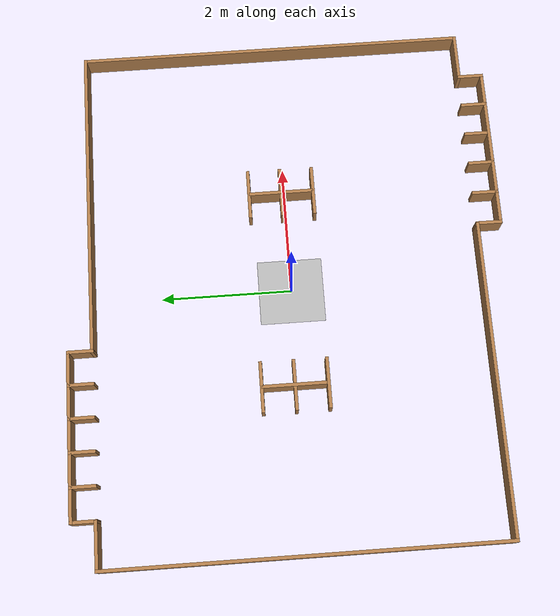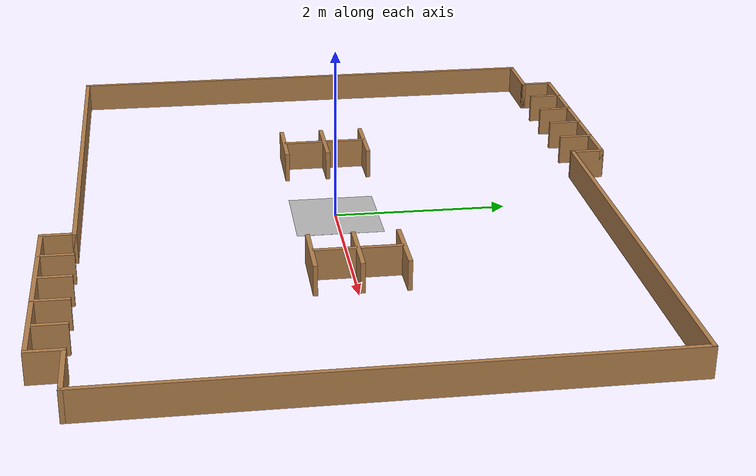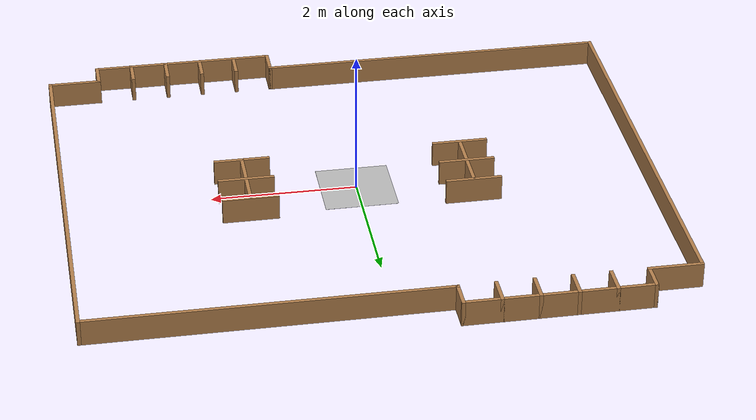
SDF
<sdf version="1.4">
  <world name="default">
    <gui>
      <camera name="camera_view">
        <pose>0 0 10 0 1.5707963 1.5707963</pose>
      </camera>
    </gui>
    <scene>
      <ambient>0.8 0.8 0.8 1.0</ambient>
      <background>0.8 0.8 0.8 1.0</background>
      <shadows>1</shadows>
    </scene>
    <physics type="ode">
      <gravity>0.0 0.0 -9.8</gravity>
      <ode>
        <solver>
          <type>quick</type>
          <iters>10</iters>
          <precon_iters>0</precon_iters>
          <sor>1.3</sor>
        </solver>
        <constraints>
          <cfm>0.000000000001</cfm>
          <erp>0.2</erp>
          <contact_max_correcting_vel>100.0</contact_max_correcting_vel>
          <contact_surface_layer>0.005</contact_surface_layer>
        </constraints>
      </ode>
      <real_time_update_rate>2000.0</real_time_update_rate>
      <max_step_size>0.001</max_step_size>
    </physics> -->
    <!-- Ground Plane -->
    <model name="plane1_model">
      <link name="body">
        <collision name="geom_1">
          <geometry>
            <plane>
              <normal>0 0 1</normal>
            </plane>
          </geometry>
          <surface>
            <friction>
              <ode>
                <mu>-1.0</mu>
                <mu2>-1.0</mu2>
                <fdir1>0.0 0.0 0.0</fdir1>
                <slip1>0.0</slip1>
                <slip2>0.0</slip2>
              </ode>
            </friction>
            <bounce>
              <restitution_coefficient>0.0</restitution_coefficient>
              <threshold>100000.0</threshold>
            </bounce>
            <contact>
              <ode>
                <soft_cfm>0.0</soft_cfm>
                <soft_erp>0.2</soft_erp>
                <kp>1000000.0</kp>
                <kd>1.0</kd>
                <max_vel>100.0</max_vel>
                <min_depth>0.001</min_depth>
              </ode>
            </contact>
          </surface>
        </collision>
        <visual name="visual_1">
          <geometry>
            <plane>
              <normal>0 0 1</normal>
            </plane>
          </geometry>
          <cast_shadows>0</cast_shadows>
        </visual>
      </link>
      <static>1</static>
    </model>
    <!-- Directional Light -->
    <!-- Point Light -->
    <!-- Walls -->
    <model name="wall_model0">
      <pose>-4 0.05 0.15 0 0 -1.5708</pose>
      <link name="wall_body">
        <pose>0 0 0 0 0 0</pose>
        <collision name="wall_geom">
          <pose>0 0 0 0 0 0</pose>
          <geometry>
            <box>
              <size>6.05 0.05 0.35</size>
            </box>
          </geometry>
          <surface>
            <friction>
              <ode>
                <mu>-1</mu>
                <mu2>-1</mu2>
                <fdir1>0.0 0.0 0.0</fdir1>
                <slip1>0</slip1>
                <slip2>0</slip2>
              </ode>
            </friction>
            <bounce>
              <restitution_coefficient>0</restitution_coefficient>
              <threshold>100000</threshold>
            </bounce>
            <contact>
              <ode>
                <soft_cfm>0</soft_cfm>
                <soft_erp>0.2</soft_erp>
                <kp>1000000000000</kp>
                <kd>1</kd>
                <max_vel>100</max_vel>
                <min_depth>0.001</min_depth>
              </ode>
            </contact>
          </surface>
          <laser_retro>0</laser_retro>
        </collision>
        <visual name="wall_geom_visual">
          <pose>0 0 0 0 0 0</pose>
          <geometry>
            <box>
              <size>6.05 0.05 0.35</size>
            </box>
          </geometry>
          <material>
            <script>
              <uri>file://media/materials/scripts/gazebo.material</uri>
              <name>Gazebo/Wood</name>
            </script>
          </material>
          <cast_shadows>1</cast_shadows>
          <laser_retro>0</laser_retro>
          <transparency>0</transparency>
        </visual>
        <gravity>1</gravity>
        <self_collide>0</self_collide>
        <kinematic>0</kinematic>
      </link>
      <static>1</static>
    </model>
    <model name="wall_model1">
      <pose>-3.65 3.05 0.15 0 0 0</pose>
      <link name="wall_body">
        <pose>0 0 0 0 0 0</pose>
        <collision name="wall_geom">
          <pose>0 0 0 0 0 0</pose>
          <geometry>
            <box>
              <size>0.75 0.05 0.35</size>
            </box>
          </geometry>
          <surface>
            <friction>
              <ode>
                <mu>-1</mu>
                <mu2>-1</mu2>
                <fdir1>0.0 0.0 0.0</fdir1>
                <slip1>0</slip1>
                <slip2>0</slip2>
              </ode>
            </friction>
            <bounce>
              <restitution_coefficient>0</restitution_coefficient>
              <threshold>100000</threshold>
            </bounce>
            <contact>
              <ode>
                <soft_cfm>0</soft_cfm>
                <soft_erp>0.2</soft_erp>
                <kp>1000000000000</kp>
                <kd>1</kd>
                <max_vel>100</max_vel>
                <min_depth>0.001</min_depth>
              </ode>
            </contact>
          </surface>
          <laser_retro>0</laser_retro>
        </collision>
        <visual name="wall_geom_visual">
          <pose>0 0 0 0 0 0</pose>
          <geometry>
            <box>
              <size>0.75 0.05 0.35</size>
            </box>
          </geometry>
          <material>
            <script>
              <uri>file://media/materials/scripts/gazebo.material</uri>
              <name>Gazebo/Wood</name>
            </script>
          </material>
          <cast_shadows>1</cast_shadows>
          <laser_retro>0</laser_retro>
          <transparency>0</transparency>
        </visual>
        <gravity>1</gravity>
        <self_collide>0</self_collide>
        <kinematic>0</kinematic>
      </link>
      <static>1</static>
    </model>
    <model name="wall_model2">
      <pose>1.6 3.05 0.15 0 0 0</pose>
      <link name="wall_body">
        <pose>0 0 0 0 0 0</pose>
        <collision name="wall_geom">
          <pose>0 0 0 0 0 0</pose>
          <geometry>
            <box>
              <size>4.85 0.05 0.35</size>
            </box>
          </geometry>
          <surface>
            <friction>
              <ode>
                <mu>-1</mu>
                <mu2>-1</mu2>
                <fdir1>0.0 0.0 0.0</fdir1>
                <slip1>0</slip1>
                <slip2>0</slip2>
              </ode>
            </friction>
            <bounce>
              <restitution_coefficient>0</restitution_coefficient>
              <threshold>100000</threshold>
            </bounce>
            <contact>
              <ode>
                <soft_cfm>0</soft_cfm>
                <soft_erp>0.2</soft_erp>
                <kp>1000000000000</kp>
                <kd>1</kd>
                <max_vel>100</max_vel>
                <min_depth>0.001</min_depth>
              </ode>
            </contact>
          </surface>
          <laser_retro>0</laser_retro>
        </collision>
        <visual name="wall_geom_visual">
          <pose>0 0 0 0 0 0</pose>
          <geometry>
            <box>
              <size>4.85 0.05 0.35</size>
            </box>
          </geometry>
          <material>
            <script>
              <uri>file://media/materials/scripts/gazebo.material</uri>
              <name>Gazebo/Wood</name>
            </script>
          </material>
          <cast_shadows>1</cast_shadows>
          <laser_retro>0</laser_retro>
          <transparency>0</transparency>
        </visual>
        <gravity>1</gravity>
        <self_collide>0</self_collide>
        <kinematic>0</kinematic>
      </link>
      <static>1</static>
    </model>
    <model name="wall_model3">
      <pose>4 0.05 0.15 0 0 -1.5708</pose>
      <link name="wall_body">
        <pose>0 0 0 0 0 0</pose>
        <collision name="wall_geom">
          <pose>0 0 0 0 0 0</pose>
          <geometry>
            <box>
              <size>6.05 0.05 0.35</size>
            </box>
          </geometry>
          <surface>
            <friction>
              <ode>
                <mu>-1</mu>
                <mu2>-1</mu2>
                <fdir1>0.0 0.0 0.0</fdir1>
                <slip1>0</slip1>
                <slip2>0</slip2>
              </ode>
            </friction>
            <bounce>
              <restitution_coefficient>0</restitution_coefficient>
              <threshold>100000</threshold>
            </bounce>
            <contact>
              <ode>
                <soft_cfm>0</soft_cfm>
                <soft_erp>0.2</soft_erp>
                <kp>1000000000000</kp>
                <kd>1</kd>
                <max_vel>100</max_vel>
                <min_depth>0.001</min_depth>
              </ode>
            </contact>
          </surface>
          <laser_retro>0</laser_retro>
        </collision>
        <visual name="wall_geom_visual">
          <pose>0 0 0 0 0 0</pose>
          <geometry>
            <box>
              <size>6.05 0.05 0.35</size>
            </box>
          </geometry>
          <material>
            <script>
              <uri>file://media/materials/scripts/gazebo.material</uri>
              <name>Gazebo/Wood</name>
            </script>
          </material>
          <cast_shadows>1</cast_shadows>
          <laser_retro>0</laser_retro>
          <transparency>0</transparency>
        </visual>
        <gravity>1</gravity>
        <self_collide>0</self_collide>
        <kinematic>0</kinematic>
      </link>
      <static>1</static>
    </model>
    <model name="wall_model4">
      <pose>-1.575 -2.95 0.15 0 0 0</pose>
      <link name="wall_body">
        <pose>0 0 0 0 0 0</pose>
        <collision name="wall_geom">
          <pose>0 0 0 0 0 0</pose>
          <geometry>
            <box>
              <size>4.8 0.05 0.35</size>
            </box>
          </geometry>
          <surface>
            <friction>
              <ode>
                <mu>-1</mu>
                <mu2>-1</mu2>
                <fdir1>0.0 0.0 0.0</fdir1>
                <slip1>0</slip1>
                <slip2>0</slip2>
              </ode>
            </friction>
            <bounce>
              <restitution_coefficient>0</restitution_coefficient>
              <threshold>100000</threshold>
            </bounce>
            <contact>
              <ode>
                <soft_cfm>0</soft_cfm>
                <soft_erp>0.2</soft_erp>
                <kp>1000000000000</kp>
                <kd>1</kd>
                <max_vel>100</max_vel>
                <min_depth>0.001</min_depth>
              </ode>
            </contact>
          </surface>
          <laser_retro>0</laser_retro>
        </collision>
        <visual name="wall_geom_visual">
          <pose>0 0 0 0 0 0</pose>
          <geometry>
            <box>
              <size>4.8 0.05 0.35</size>
            </box>
          </geometry>
          <material>
            <script>
              <uri>file://media/materials/scripts/gazebo.material</uri>
              <name>Gazebo/Wood</name>
            </script>
          </material>
          <cast_shadows>1</cast_shadows>
          <laser_retro>0</laser_retro>
          <transparency>0</transparency>
        </visual>
        <gravity>1</gravity>
        <self_collide>0</self_collide>
        <kinematic>0</kinematic>
      </link>
      <static>1</static>
    </model>
    <model name="wall_model5">
      <pose>3.65 -2.95 0.15 0 0 0</pose>
      <link name="wall_body">
        <pose>0 0 0 0 0 0</pose>
        <collision name="wall_geom">
          <pose>0 0 0 0 0 0</pose>
          <geometry>
            <box>
              <size>0.75 0.05 0.35</size>
            </box>
          </geometry>
          <surface>
            <friction>
              <ode>
                <mu>-1</mu>
                <mu2>-1</mu2>
                <fdir1>0.0 0.0 0.0</fdir1>
                <slip1>0</slip1>
                <slip2>0</slip2>
              </ode>
            </friction>
            <bounce>
              <restitution_coefficient>0</restitution_coefficient>
              <threshold>100000</threshold>
            </bounce>
            <contact>
              <ode>
                <soft_cfm>0</soft_cfm>
                <soft_erp>0.2</soft_erp>
                <kp>1000000000000</kp>
                <kd>1</kd>
                <max_vel>100</max_vel>
                <min_depth>0.001</min_depth>
              </ode>
            </contact>
          </surface>
          <laser_retro>0</laser_retro>
        </collision>
        <visual name="wall_geom_visual">
          <pose>0 0 0 0 0 0</pose>
          <geometry>
            <box>
              <size>0.75 0.05 0.35</size>
            </box>
          </geometry>
          <material>
            <script>
              <uri>file://media/materials/scripts/gazebo.material</uri>
              <name>Gazebo/Wood</name>
            </script>
          </material>
          <cast_shadows>1</cast_shadows>
          <laser_retro>0</laser_retro>
          <transparency>0</transparency>
        </visual>
        <gravity>1</gravity>
        <self_collide>0</self_collide>
        <kinematic>0</kinematic>
      </link>
      <static>1</static>
    </model>
    <model name="wall_model6">
      <pose>-3.3 3.23 0.15 0 0 1.5708</pose>
      <link name="wall_body">
        <pose>0 0 0 0 0 0</pose>
        <collision name="wall_geom">
          <pose>0 0 0 0 0 0</pose>
          <geometry>
            <box>
              <size>0.41 0.05 0.35</size>
            </box>
          </geometry>
          <surface>
            <friction>
              <ode>
                <mu>-1</mu>
                <mu2>-1</mu2>
                <fdir1>0.0 0.0 0.0</fdir1>
                <slip1>0</slip1>
                <slip2>0</slip2>
              </ode>
            </friction>
            <bounce>
              <restitution_coefficient>0</restitution_coefficient>
              <threshold>100000</threshold>
            </bounce>
            <contact>
              <ode>
                <soft_cfm>0</soft_cfm>
                <soft_erp>0.2</soft_erp>
                <kp>1000000000000</kp>
                <kd>1</kd>
                <max_vel>100</max_vel>
                <min_depth>0.001</min_depth>
              </ode>
            </contact>
          </surface>
          <laser_retro>0</laser_retro>
        </collision>
        <visual name="wall_geom_visual">
          <pose>0 0 0 0 0 0</pose>
          <geometry>
            <box>
              <size>0.41 0.05 0.35</size>
            </box>
          </geometry>
          <material>
            <script>
              <uri>file://media/materials/scripts/gazebo.material</uri>
              <name>Gazebo/Wood</name>
            </script>
          </material>
          <cast_shadows>1</cast_shadows>
          <laser_retro>0</laser_retro>
          <transparency>0</transparency>
        </visual>
        <gravity>1</gravity>
        <self_collide>0</self_collide>
        <kinematic>0</kinematic>
      </link>
      <static>1</static>
    </model>
    <model name="wall_model7">
      <pose>-2.8 3.23 0.15 0 0 1.5708</pose>
      <link name="wall_body">
        <pose>0 0 0 0 0 0</pose>
        <collision name="wall_geom">
          <pose>0 0 0 0 0 0</pose>
          <geometry>
            <box>
              <size>0.41 0.05 0.35</size>
            </box>
          </geometry>
          <surface>
            <friction>
              <ode>
                <mu>-1</mu>
                <mu2>-1</mu2>
                <fdir1>0.0 0.0 0.0</fdir1>
                <slip1>0</slip1>
                <slip2>0</slip2>
              </ode>
            </friction>
            <bounce>
              <restitution_coefficient>0</restitution_coefficient>
              <threshold>100000</threshold>
            </bounce>
            <contact>
              <ode>
                <soft_cfm>0</soft_cfm>
                <soft_erp>0.2</soft_erp>
                <kp>1000000000000</kp>
                <kd>1</kd>
                <max_vel>100</max_vel>
                <min_depth>0.001</min_depth>
              </ode>
            </contact>
          </surface>
          <laser_retro>0</laser_retro>
        </collision>
        <visual name="wall_geom_visual">
          <pose>0 0 0 0 0 0</pose>
          <geometry>
            <box>
              <size>0.41 0.05 0.35</size>
            </box>
          </geometry>
          <material>
            <script>
              <uri>file://media/materials/scripts/gazebo.material</uri>
              <name>Gazebo/Wood</name>
            </script>
          </material>
          <cast_shadows>1</cast_shadows>
          <laser_retro>0</laser_retro>
          <transparency>0</transparency>
        </visual>
        <gravity>1</gravity>
        <self_collide>0</self_collide>
        <kinematic>0</kinematic>
      </link>
      <static>1</static>
    </model>
    <model name="wall_model8">
      <pose>-2.3 3.23 0.15 0 0 1.5708</pose>
      <link name="wall_body">
        <pose>0 0 0 0 0 0</pose>
        <collision name="wall_geom">
          <pose>0 0 0 0 0 0</pose>
          <geometry>
            <box>
              <size>0.41 0.05 0.35</size>
            </box>
          </geometry>
          <surface>
            <friction>
              <ode>
                <mu>-1</mu>
                <mu2>-1</mu2>
                <fdir1>0.0 0.0 0.0</fdir1>
                <slip1>0</slip1>
                <slip2>0</slip2>
              </ode>
            </friction>
            <bounce>
              <restitution_coefficient>0</restitution_coefficient>
              <threshold>100000</threshold>
            </bounce>
            <contact>
              <ode>
                <soft_cfm>0</soft_cfm>
                <soft_erp>0.2</soft_erp>
                <kp>1000000000000</kp>
                <kd>1</kd>
                <max_vel>100</max_vel>
                <min_depth>0.001</min_depth>
              </ode>
            </contact>
          </surface>
          <laser_retro>0</laser_retro>
        </collision>
        <visual name="wall_geom_visual">
          <pose>0 0 0 0 0 0</pose>
          <geometry>
            <box>
              <size>0.41 0.05 0.35</size>
            </box>
          </geometry>
          <material>
            <script>
              <uri>file://media/materials/scripts/gazebo.material</uri>
              <name>Gazebo/Wood</name>
            </script>
          </material>
          <cast_shadows>1</cast_shadows>
          <laser_retro>0</laser_retro>
          <transparency>0</transparency>
        </visual>
        <gravity>1</gravity>
        <self_collide>0</self_collide>
        <kinematic>0</kinematic>
      </link>
      <static>1</static>
    </model>
    <model name="wall_model9">
      <pose>-1.8 3.23 0.15 0 0 1.5708</pose>
      <link name="wall_body">
        <pose>0 0 0 0 0 0</pose>
        <collision name="wall_geom">
          <pose>0 0 0 0 0 0</pose>
          <geometry>
            <box>
              <size>0.41 0.05 0.35</size>
            </box>
          </geometry>
          <surface>
            <friction>
              <ode>
                <mu>-1</mu>
                <mu2>-1</mu2>
                <fdir1>0.0 0.0 0.0</fdir1>
                <slip1>0</slip1>
                <slip2>0</slip2>
              </ode>
            </friction>
            <bounce>
              <restitution_coefficient>0</restitution_coefficient>
              <threshold>100000</threshold>
            </bounce>
            <contact>
              <ode>
                <soft_cfm>0</soft_cfm>
                <soft_erp>0.2</soft_erp>
                <kp>1000000000000</kp>
                <kd>1</kd>
                <max_vel>100</max_vel>
                <min_depth>0.001</min_depth>
              </ode>
            </contact>
          </surface>
          <laser_retro>0</laser_retro>
        </collision>
        <visual name="wall_geom_visual">
          <pose>0 0 0 0 0 0</pose>
          <geometry>
            <box>
              <size>0.41 0.05 0.35</size>
            </box>
          </geometry>
          <material>
            <script>
              <uri>file://media/materials/scripts/gazebo.material</uri>
              <name>Gazebo/Wood</name>
            </script>
          </material>
          <cast_shadows>1</cast_shadows>
          <laser_retro>0</laser_retro>
          <transparency>0</transparency>
        </visual>
        <gravity>1</gravity>
        <self_collide>0</self_collide>
        <kinematic>0</kinematic>
      </link>
      <static>1</static>
    </model>
    <model name="wall_model10">
      <pose>-1.3 3.23 0.15 0 0 1.5708</pose>
      <link name="wall_body">
        <pose>0 0 0 0 0 0</pose>
        <collision name="wall_geom">
          <pose>0 0 0 0 0 0</pose>
          <geometry>
            <box>
              <size>0.41 0.05 0.35</size>
            </box>
          </geometry>
          <surface>
            <friction>
              <ode>
                <mu>-1</mu>
                <mu2>-1</mu2>
                <fdir1>0.0 0.0 0.0</fdir1>
                <slip1>0</slip1>
                <slip2>0</slip2>
              </ode>
            </friction>
            <bounce>
              <restitution_coefficient>0</restitution_coefficient>
              <threshold>100000</threshold>
            </bounce>
            <contact>
              <ode>
                <soft_cfm>0</soft_cfm>
                <soft_erp>0.2</soft_erp>
                <kp>1000000000000</kp>
                <kd>1</kd>
                <max_vel>100</max_vel>
                <min_depth>0.001</min_depth>
              </ode>
            </contact>
          </surface>
          <laser_retro>0</laser_retro>
        </collision>
        <visual name="wall_geom_visual">
          <pose>0 0 0 0 0 0</pose>
          <geometry>
            <box>
              <size>0.41 0.05 0.35</size>
            </box>
          </geometry>
          <material>
            <script>
              <uri>file://media/materials/scripts/gazebo.material</uri>
              <name>Gazebo/Wood</name>
            </script>
          </material>
          <cast_shadows>1</cast_shadows>
          <laser_retro>0</laser_retro>
          <transparency>0</transparency>
        </visual>
        <gravity>1</gravity>
        <self_collide>0</self_collide>
        <kinematic>0</kinematic>
      </link>
      <static>1</static>
    </model>
    <model name="wall_model11">
      <pose>-0.8 3.23 0.15 0 0 1.5708</pose>
      <link name="wall_body">
        <pose>0 0 0 0 0 0</pose>
        <collision name="wall_geom">
          <pose>0 0 0 0 0 0</pose>
          <geometry>
            <box>
              <size>0.41 0.05 0.35</size>
            </box>
          </geometry>
          <surface>
            <friction>
              <ode>
                <mu>-1</mu>
                <mu2>-1</mu2>
                <fdir1>0.0 0.0 0.0</fdir1>
                <slip1>0</slip1>
                <slip2>0</slip2>
              </ode>
            </friction>
            <bounce>
              <restitution_coefficient>0</restitution_coefficient>
              <threshold>100000</threshold>
            </bounce>
            <contact>
              <ode>
                <soft_cfm>0</soft_cfm>
                <soft_erp>0.2</soft_erp>
                <kp>1000000000000</kp>
                <kd>1</kd>
                <max_vel>100</max_vel>
                <min_depth>0.001</min_depth>
              </ode>
            </contact>
          </surface>
          <laser_retro>0</laser_retro>
        </collision>
        <visual name="wall_geom_visual">
          <pose>0 0 0 0 0 0</pose>
          <geometry>
            <box>
              <size>0.41 0.05 0.35</size>
            </box>
          </geometry>
          <material>
            <script>
              <uri>file://media/materials/scripts/gazebo.material</uri>
              <name>Gazebo/Wood</name>
            </script>
          </material>
          <cast_shadows>1</cast_shadows>
          <laser_retro>0</laser_retro>
          <transparency>0</transparency>
        </visual>
        <gravity>1</gravity>
        <self_collide>0</self_collide>
        <kinematic>0</kinematic>
      </link>
      <static>1</static>
    </model>
    <model name="wall_model12">
      <pose>-2.05 3.41 0.15 0 0 0</pose>
      <link name="wall_body">
        <pose>0 0 0 0 0 0</pose>
        <collision name="wall_geom">
          <pose>0 0 0 0 0 0</pose>
          <geometry>
            <box>
              <size>2.55 0.05 0.35</size>
            </box>
          </geometry>
          <surface>
            <friction>
              <ode>
                <mu>-1</mu>
                <mu2>-1</mu2>
                <fdir1>0.0 0.0 0.0</fdir1>
                <slip1>0</slip1>
                <slip2>0</slip2>
              </ode>
            </friction>
            <bounce>
              <restitution_coefficient>0</restitution_coefficient>
              <threshold>100000</threshold>
            </bounce>
            <contact>
              <ode>
                <soft_cfm>0</soft_cfm>
                <soft_erp>0.2</soft_erp>
                <kp>1000000000000</kp>
                <kd>1</kd>
                <max_vel>100</max_vel>
                <min_depth>0.001</min_depth>
              </ode>
            </contact>
          </surface>
          <laser_retro>0</laser_retro>
        </collision>
        <visual name="wall_geom_visual">
          <pose>0 0 0 0 0 0</pose>
          <geometry>
            <box>
              <size>2.55 0.05 0.35</size>
            </box>
          </geometry>
          <material>
            <script>
              <uri>file://media/materials/scripts/gazebo.material</uri>
              <name>Gazebo/Wood</name>
            </script>
          </material>
          <cast_shadows>1</cast_shadows>
          <laser_retro>0</laser_retro>
          <transparency>0</transparency>
        </visual>
        <gravity>1</gravity>
        <self_collide>0</self_collide>
        <kinematic>0</kinematic>
      </link>
      <static>1</static>
    </model>
    <model name="wall_model13">
      <pose>3.3 -3.13 0.15 0 0 -1.5708</pose>
      <link name="wall_body">
        <pose>0 0 0 0 0 0</pose>
        <collision name="wall_geom">
          <pose>0 0 0 0 0 0</pose>
          <geometry>
            <box>
              <size>0.41 0.05 0.35</size>
            </box>
          </geometry>
          <surface>
            <friction>
              <ode>
                <mu>-1</mu>
                <mu2>-1</mu2>
                <fdir1>0.0 0.0 0.0</fdir1>
                <slip1>0</slip1>
                <slip2>0</slip2>
              </ode>
            </friction>
            <bounce>
              <restitution_coefficient>0</restitution_coefficient>
              <threshold>100000</threshold>
            </bounce>
            <contact>
              <ode>
                <soft_cfm>0</soft_cfm>
                <soft_erp>0.2</soft_erp>
                <kp>1000000000000</kp>
                <kd>1</kd>
                <max_vel>100</max_vel>
                <min_depth>0.001</min_depth>
              </ode>
            </contact>
          </surface>
          <laser_retro>0</laser_retro>
        </collision>
        <visual name="wall_geom_visual">
          <pose>0 0 0 0 0 0</pose>
          <geometry>
            <box>
              <size>0.41 0.05 0.35</size>
            </box>
          </geometry>
          <material>
            <script>
              <uri>file://media/materials/scripts/gazebo.material</uri>
              <name>Gazebo/Wood</name>
            </script>
          </material>
          <cast_shadows>1</cast_shadows>
          <laser_retro>0</laser_retro>
          <transparency>0</transparency>
        </visual>
        <gravity>1</gravity>
        <self_collide>0</self_collide>
        <kinematic>0</kinematic>
      </link>
      <static>1</static>
    </model>
    <model name="wall_model14">
      <pose>2.8 -3.13 0.15 0 0 -1.5708</pose>
      <link name="wall_body">
        <pose>0 0 0 0 0 0</pose>
        <collision name="wall_geom">
          <pose>0 0 0 0 0 0</pose>
          <geometry>
            <box>
              <size>0.41 0.05 0.35</size>
            </box>
          </geometry>
          <surface>
            <friction>
              <ode>
                <mu>-1</mu>
                <mu2>-1</mu2>
                <fdir1>0.0 0.0 0.0</fdir1>
                <slip1>0</slip1>
                <slip2>0</slip2>
              </ode>
            </friction>
            <bounce>
              <restitution_coefficient>0</restitution_coefficient>
              <threshold>100000</threshold>
            </bounce>
            <contact>
              <ode>
                <soft_cfm>0</soft_cfm>
                <soft_erp>0.2</soft_erp>
                <kp>1000000000000</kp>
                <kd>1</kd>
                <max_vel>100</max_vel>
                <min_depth>0.001</min_depth>
              </ode>
            </contact>
          </surface>
          <laser_retro>0</laser_retro>
        </collision>
        <visual name="wall_geom_visual">
          <pose>0 0 0 0 0 0</pose>
          <geometry>
            <box>
              <size>0.41 0.05 0.35</size>
            </box>
          </geometry>
          <material>
            <script>
              <uri>file://media/materials/scripts/gazebo.material</uri>
              <name>Gazebo/Wood</name>
            </script>
          </material>
          <cast_shadows>1</cast_shadows>
          <laser_retro>0</laser_retro>
          <transparency>0</transparency>
        </visual>
        <gravity>1</gravity>
        <self_collide>0</self_collide>
        <kinematic>0</kinematic>
      </link>
      <static>1</static>
    </model>
    <model name="wall_model15">
      <pose>2.3 -3.13 0.15 0 0 -1.5708</pose>
      <link name="wall_body">
        <pose>0 0 0 0 0 0</pose>
        <collision name="wall_geom">
          <pose>0 0 0 0 0 0</pose>
          <geometry>
            <box>
              <size>0.41 0.05 0.35</size>
            </box>
          </geometry>
          <surface>
            <friction>
              <ode>
                <mu>-1</mu>
                <mu2>-1</mu2>
                <fdir1>0.0 0.0 0.0</fdir1>
                <slip1>0</slip1>
                <slip2>0</slip2>
              </ode>
            </friction>
            <bounce>
              <restitution_coefficient>0</restitution_coefficient>
              <threshold>100000</threshold>
            </bounce>
            <contact>
              <ode>
                <soft_cfm>0</soft_cfm>
                <soft_erp>0.2</soft_erp>
                <kp>1000000000000</kp>
                <kd>1</kd>
                <max_vel>100</max_vel>
                <min_depth>0.001</min_depth>
              </ode>
            </contact>
          </surface>
          <laser_retro>0</laser_retro>
        </collision>
        <visual name="wall_geom_visual">
          <pose>0 0 0 0 0 0</pose>
          <geometry>
            <box>
              <size>0.41 0.05 0.35</size>
            </box>
          </geometry>
          <material>
            <script>
              <uri>file://media/materials/scripts/gazebo.material</uri>
              <name>Gazebo/Wood</name>
            </script>
          </material>
          <cast_shadows>1</cast_shadows>
          <laser_retro>0</laser_retro>
          <transparency>0</transparency>
        </visual>
        <gravity>1</gravity>
        <self_collide>0</self_collide>
        <kinematic>0</kinematic>
      </link>
      <static>1</static>
    </model>
    <model name="wall_model16">
      <pose>1.8 -3.13 0.15 0 0 -1.5708</pose>
      <link name="wall_body">
        <pose>0 0 0 0 0 0</pose>
        <collision name="wall_geom">
          <pose>0 0 0 0 0 0</pose>
          <geometry>
            <box>
              <size>0.41 0.05 0.35</size>
            </box>
          </geometry>
          <surface>
            <friction>
              <ode>
                <mu>-1</mu>
                <mu2>-1</mu2>
                <fdir1>0.0 0.0 0.0</fdir1>
                <slip1>0</slip1>
                <slip2>0</slip2>
              </ode>
            </friction>
            <bounce>
              <restitution_coefficient>0</restitution_coefficient>
              <threshold>100000</threshold>
            </bounce>
            <contact>
              <ode>
                <soft_cfm>0</soft_cfm>
                <soft_erp>0.2</soft_erp>
                <kp>1000000000000</kp>
                <kd>1</kd>
                <max_vel>100</max_vel>
                <min_depth>0.001</min_depth>
              </ode>
            </contact>
          </surface>
          <laser_retro>0</laser_retro>
        </collision>
        <visual name="wall_geom_visual">
          <pose>0 0 0 0 0 0</pose>
          <geometry>
            <box>
              <size>0.41 0.05 0.35</size>
            </box>
          </geometry>
          <material>
            <script>
              <uri>file://media/materials/scripts/gazebo.material</uri>
              <name>Gazebo/Wood</name>
            </script>
          </material>
          <cast_shadows>1</cast_shadows>
          <laser_retro>0</laser_retro>
          <transparency>0</transparency>
        </visual>
        <gravity>1</gravity>
        <self_collide>0</self_collide>
        <kinematic>0</kinematic>
      </link>
      <static>1</static>
    </model>
    <model name="wall_model17">
      <pose>1.3 -3.13 0.15 0 0 -1.5708</pose>
      <link name="wall_body">
        <pose>0 0 0 0 0 0</pose>
        <collision name="wall_geom">
          <pose>0 0 0 0 0 0</pose>
          <geometry>
            <box>
              <size>0.41 0.05 0.35</size>
            </box>
          </geometry>
          <surface>
            <friction>
              <ode>
                <mu>-1</mu>
                <mu2>-1</mu2>
                <fdir1>0.0 0.0 0.0</fdir1>
                <slip1>0</slip1>
                <slip2>0</slip2>
              </ode>
            </friction>
            <bounce>
              <restitution_coefficient>0</restitution_coefficient>
              <threshold>100000</threshold>
            </bounce>
            <contact>
              <ode>
                <soft_cfm>0</soft_cfm>
                <soft_erp>0.2</soft_erp>
                <kp>1000000000000</kp>
                <kd>1</kd>
                <max_vel>100</max_vel>
                <min_depth>0.001</min_depth>
              </ode>
            </contact>
          </surface>
          <laser_retro>0</laser_retro>
        </collision>
        <visual name="wall_geom_visual">
          <pose>0 0 0 0 0 0</pose>
          <geometry>
            <box>
              <size>0.41 0.05 0.35</size>
            </box>
          </geometry>
          <material>
            <script>
              <uri>file://media/materials/scripts/gazebo.material</uri>
              <name>Gazebo/Wood</name>
            </script>
          </material>
          <cast_shadows>1</cast_shadows>
          <laser_retro>0</laser_retro>
          <transparency>0</transparency>
        </visual>
        <gravity>1</gravity>
        <self_collide>0</self_collide>
        <kinematic>0</kinematic>
      </link>
      <static>1</static>
    </model>
    <model name="wall_model18">
      <pose>0.8 -3.13 0.15 0 0 -1.5708</pose>
      <link name="wall_body">
        <pose>0 0 0 0 0 0</pose>
        <collision name="wall_geom">
          <pose>0 0 0 0 0 0</pose>
          <geometry>
            <box>
              <size>0.41 0.05 0.35</size>
            </box>
          </geometry>
          <surface>
            <friction>
              <ode>
                <mu>-1</mu>
                <mu2>-1</mu2>
                <fdir1>0.0 0.0 0.0</fdir1>
                <slip1>0</slip1>
                <slip2>0</slip2>
              </ode>
            </friction>
            <bounce>
              <restitution_coefficient>0</restitution_coefficient>
              <threshold>100000</threshold>
            </bounce>
            <contact>
              <ode>
                <soft_cfm>0</soft_cfm>
                <soft_erp>0.2</soft_erp>
                <kp>1000000000000</kp>
                <kd>1</kd>
                <max_vel>100</max_vel>
                <min_depth>0.001</min_depth>
              </ode>
            </contact>
          </surface>
          <laser_retro>0</laser_retro>
        </collision>
        <visual name="wall_geom_visual">
          <pose>0 0 0 0 0 0</pose>
          <geometry>
            <box>
              <size>0.41 0.05 0.35</size>
            </box>
          </geometry>
          <material>
            <script>
              <uri>file://media/materials/scripts/gazebo.material</uri>
              <name>Gazebo/Wood</name>
            </script>
          </material>
          <cast_shadows>1</cast_shadows>
          <laser_retro>0</laser_retro>
          <transparency>0</transparency>
        </visual>
        <gravity>1</gravity>
        <self_collide>0</self_collide>
        <kinematic>0</kinematic>
      </link>
      <static>1</static>
    </model>
    <model name="wall_model19">
      <pose>2.05 -3.31 0.15 0 0 3.1416</pose>
      <link name="wall_body">
        <pose>0 0 0 0 0 0</pose>
        <collision name="wall_geom">
          <pose>0 0 0 0 0 0</pose>
          <geometry>
            <box>
              <size>2.45 0.05 0.35</size>
            </box>
          </geometry>
          <surface>
            <friction>
              <ode>
                <mu>-1</mu>
                <mu2>-1</mu2>
                <fdir1>0.0 0.0 0.0</fdir1>
                <slip1>0</slip1>
                <slip2>0</slip2>
              </ode>
            </friction>
            <bounce>
              <restitution_coefficient>0</restitution_coefficient>
              <threshold>100000</threshold>
            </bounce>
            <contact>
              <ode>
                <soft_cfm>0</soft_cfm>
                <soft_erp>0.2</soft_erp>
                <kp>1000000000000</kp>
                <kd>1</kd>
                <max_vel>100</max_vel>
                <min_depth>0.001</min_depth>
              </ode>
            </contact>
          </surface>
          <laser_retro>0</laser_retro>
        </collision>
        <visual name="wall_geom_visual">
          <pose>0 0 0 0 0 0</pose>
          <geometry>
            <box>
              <size>2.45 0.05 0.35</size>
            </box>
          </geometry>
          <material>
            <script>
              <uri>file://media/materials/scripts/gazebo.material</uri>
              <name>Gazebo/Wood</name>
            </script>
          </material>
          <cast_shadows>1</cast_shadows>
          <laser_retro>0</laser_retro>
          <transparency>0</transparency>
        </visual>
        <gravity>1</gravity>
        <self_collide>0</self_collide>
        <kinematic>0</kinematic>
      </link>
      <static>1</static>
    </model>
    <model name="wall_model20">
      <pose>-1.525 0.05 0.15 0 0 -1.5708</pose>
      <link name="wall_body">
        <pose>0 0 0 0 0 0</pose>
        <collision name="wall_geom">
          <pose>0 0 0 0 0 0</pose>
          <geometry>
            <box>
              <size>1 0.05 0.35</size>
            </box>
          </geometry>
          <surface>
            <friction>
              <ode>
                <mu>-1</mu>
                <mu2>-1</mu2>
                <fdir1>0.0 0.0 0.0</fdir1>
                <slip1>0</slip1>
                <slip2>0</slip2>
              </ode>
            </friction>
            <bounce>
              <restitution_coefficient>0</restitution_coefficient>
              <threshold>100000</threshold>
            </bounce>
            <contact>
              <ode>
                <soft_cfm>0</soft_cfm>
                <soft_erp>0.2</soft_erp>
                <kp>1000000000000</kp>
                <kd>1</kd>
                <max_vel>100</max_vel>
                <min_depth>0.001</min_depth>
              </ode>
            </contact>
          </surface>
          <laser_retro>0</laser_retro>
        </collision>
        <visual name="wall_geom_visual">
          <pose>0 0 0 0 0 0</pose>
          <geometry>
            <box>
              <size>1 0.05 0.35</size>
            </box>
          </geometry>
          <material>
            <script>
              <uri>file://media/materials/scripts/gazebo.material</uri>
              <name>Gazebo/Wood</name>
            </script>
          </material>
          <cast_shadows>1</cast_shadows>
          <laser_retro>0</laser_retro>
          <transparency>0</transparency>
        </visual>
        <gravity>1</gravity>
        <self_collide>0</self_collide>
        <kinematic>0</kinematic>
      </link>
      <static>1</static>
    </model>
    <model name="wall_model21">
      <pose>-1.525 0.55 0.15 0 0 0</pose>
      <link name="wall_body">
        <pose>0 0 0 0 0 0</pose>
        <collision name="wall_geom">
          <pose>0 0 0 0 0 0</pose>
          <geometry>
            <box>
              <size>0.77 0.05 0.35</size>
            </box>
          </geometry>
          <surface>
            <friction>
              <ode>
                <mu>-1</mu>
                <mu2>-1</mu2>
                <fdir1>0.0 0.0 0.0</fdir1>
                <slip1>0</slip1>
                <slip2>0</slip2>
              </ode>
            </friction>
            <bounce>
              <restitution_coefficient>0</restitution_coefficient>
              <threshold>100000</threshold>
            </bounce>
            <contact>
              <ode>
                <soft_cfm>0</soft_cfm>
                <soft_erp>0.2</soft_erp>
                <kp>1000000000000</kp>
                <kd>1</kd>
                <max_vel>100</max_vel>
                <min_depth>0.001</min_depth>
              </ode>
            </contact>
          </surface>
          <laser_retro>0</laser_retro>
        </collision>
        <visual name="wall_geom_visual">
          <pose>0 0 0 0 0 0</pose>
          <geometry>
            <box>
              <size>0.77 0.05 0.35</size>
            </box>
          </geometry>
          <material>
            <script>
              <uri>file://media/materials/scripts/gazebo.material</uri>
              <name>Gazebo/Wood</name>
            </script>
          </material>
          <cast_shadows>1</cast_shadows>
          <laser_retro>0</laser_retro>
          <transparency>0</transparency>
        </visual>
        <gravity>1</gravity>
        <self_collide>0</self_collide>
        <kinematic>0</kinematic>
      </link>
      <static>1</static>
    </model>
    <model name="wall_model22">
      <pose>-1.525 0.05 0.15 0 0 0</pose>
      <link name="wall_body">
        <pose>0 0 0 0 0 0</pose>
        <collision name="wall_geom">
          <pose>0 0 0 0 0 0</pose>
          <geometry>
            <box>
              <size>0.77 0.05 0.35</size>
            </box>
          </geometry>
          <surface>
            <friction>
              <ode>
                <mu>-1</mu>
                <mu2>-1</mu2>
                <fdir1>0.0 0.0 0.0</fdir1>
                <slip1>0</slip1>
                <slip2>0</slip2>
              </ode>
            </friction>
            <bounce>
              <restitution_coefficient>0</restitution_coefficient>
              <threshold>100000</threshold>
            </bounce>
            <contact>
              <ode>
                <soft_cfm>0</soft_cfm>
                <soft_erp>0.2</soft_erp>
                <kp>1000000000000</kp>
                <kd>1</kd>
                <max_vel>100</max_vel>
                <min_depth>0.001</min_depth>
              </ode>
            </contact>
          </surface>
          <laser_retro>0</laser_retro>
        </collision>
        <visual name="wall_geom_visual">
          <pose>0 0 0 0 0 0</pose>
          <geometry>
            <box>
              <size>0.77 0.05 0.35</size>
            </box>
          </geometry>
          <material>
            <script>
              <uri>file://media/materials/scripts/gazebo.material</uri>
              <name>Gazebo/Wood</name>
            </script>
          </material>
          <cast_shadows>1</cast_shadows>
          <laser_retro>0</laser_retro>
          <transparency>0</transparency>
        </visual>
        <gravity>1</gravity>
        <self_collide>0</self_collide>
        <kinematic>0</kinematic>
      </link>
      <static>1</static>
    </model>
    <model name="wall_model23">
      <pose>-1.525 -0.45 0.15 0 0 0</pose>
      <link name="wall_body">
        <pose>0 0 0 0 0 0</pose>
        <collision name="wall_geom">
          <pose>0 0 0 0 0 0</pose>
          <geometry>
            <box>
              <size>0.77 0.05 0.35</size>
            </box>
          </geometry>
          <surface>
            <friction>
              <ode>
                <mu>-1</mu>
                <mu2>-1</mu2>
                <fdir1>0.0 0.0 0.0</fdir1>
                <slip1>0</slip1>
                <slip2>0</slip2>
              </ode>
            </friction>
            <bounce>
              <restitution_coefficient>0</restitution_coefficient>
              <threshold>100000</threshold>
            </bounce>
            <contact>
              <ode>
                <soft_cfm>0</soft_cfm>
                <soft_erp>0.2</soft_erp>
                <kp>1000000000000</kp>
                <kd>1</kd>
                <max_vel>100</max_vel>
                <min_depth>0.001</min_depth>
              </ode>
            </contact>
          </surface>
          <laser_retro>0</laser_retro>
        </collision>
        <visual name="wall_geom_visual">
          <pose>0 0 0 0 0 0</pose>
          <geometry>
            <box>
              <size>0.77 0.05 0.35</size>
            </box>
          </geometry>
          <material>
            <script>
              <uri>file://media/materials/scripts/gazebo.material</uri>
              <name>Gazebo/Wood</name>
            </script>
          </material>
          <cast_shadows>1</cast_shadows>
          <laser_retro>0</laser_retro>
          <transparency>0</transparency>
        </visual>
        <gravity>1</gravity>
        <self_collide>0</self_collide>
        <kinematic>0</kinematic>
      </link>
      <static>1</static>
    </model>
    <model name="wall_model24">
      <pose>1.525 0.05 0.15 0 0 -1.5708</pose>
      <link name="wall_body">
        <pose>0 0 0 0 0 0</pose>
        <collision name="wall_geom">
          <pose>0 0 0 0 0 0</pose>
          <geometry>
            <box>
              <size>1 0.05 0.35</size>
            </box>
          </geometry>
          <surface>
            <friction>
              <ode>
                <mu>-1</mu>
                <mu2>-1</mu2>
                <fdir1>0.0 0.0 0.0</fdir1>
                <slip1>0</slip1>
                <slip2>0</slip2>
              </ode>
            </friction>
            <bounce>
              <restitution_coefficient>0</restitution_coefficient>
              <threshold>100000</threshold>
            </bounce>
            <contact>
              <ode>
                <soft_cfm>0</soft_cfm>
                <soft_erp>0.2</soft_erp>
                <kp>1000000000000</kp>
                <kd>1</kd>
                <max_vel>100</max_vel>
                <min_depth>0.001</min_depth>
              </ode>
            </contact>
          </surface>
          <laser_retro>0</laser_retro>
        </collision>
        <visual name="wall_geom_visual">
          <pose>0 0 0 0 0 0</pose>
          <geometry>
            <box>
              <size>1 0.05 0.35</size>
            </box>
          </geometry>
          <material>
            <script>
              <uri>file://media/materials/scripts/gazebo.material</uri>
              <name>Gazebo/Wood</name>
            </script>
          </material>
          <cast_shadows>1</cast_shadows>
          <laser_retro>0</laser_retro>
          <transparency>0</transparency>
        </visual>
        <gravity>1</gravity>
        <self_collide>0</self_collide>
        <kinematic>0</kinematic>
      </link>
      <static>1</static>
    </model>
    <model name="wall_model25">
      <pose>1.525 0.55 0.15 0 0 0</pose>
      <link name="wall_body">
        <pose>0 0 0 0 0 0</pose>
        <collision name="wall_geom">
          <pose>0 0 0 0 0 0</pose>
          <geometry>
            <box>
              <size>0.77 0.05 0.35</size>
            </box>
          </geometry>
          <surface>
            <friction>
              <ode>
                <mu>-1</mu>
                <mu2>-1</mu2>
                <fdir1>0.0 0.0 0.0</fdir1>
                <slip1>0</slip1>
                <slip2>0</slip2>
              </ode>
            </friction>
            <bounce>
              <restitution_coefficient>0</restitution_coefficient>
              <threshold>100000</threshold>
            </bounce>
            <contact>
              <ode>
                <soft_cfm>0</soft_cfm>
                <soft_erp>0.2</soft_erp>
                <kp>1000000000000</kp>
                <kd>1</kd>
                <max_vel>100</max_vel>
                <min_depth>0.001</min_depth>
              </ode>
            </contact>
          </surface>
          <laser_retro>0</laser_retro>
        </collision>
        <visual name="wall_geom_visual">
          <pose>0 0 0 0 0 0</pose>
          <geometry>
            <box>
              <size>0.77 0.05 0.35</size>
            </box>
          </geometry>
          <material>
            <script>
              <uri>file://media/materials/scripts/gazebo.material</uri>
              <name>Gazebo/Wood</name>
            </script>
          </material>
          <cast_shadows>1</cast_shadows>
          <laser_retro>0</laser_retro>
          <transparency>0</transparency>
        </visual>
        <gravity>1</gravity>
        <self_collide>0</self_collide>
        <kinematic>0</kinematic>
      </link>
      <static>1</static>
    </model>
    <model name="wall_model26">
      <pose>1.525 0.05 0.15 0 0 0</pose>
      <link name="wall_body">
        <pose>0 0 0 0 0 0</pose>
        <collision name="wall_geom">
          <pose>0 0 0 0 0 0</pose>
          <geometry>
            <box>
              <size>0.77 0.05 0.35</size>
            </box>
          </geometry>
          <surface>
            <friction>
              <ode>
                <mu>-1</mu>
                <mu2>-1</mu2>
                <fdir1>0.0 0.0 0.0</fdir1>
                <slip1>0</slip1>
                <slip2>0</slip2>
              </ode>
            </friction>
            <bounce>
              <restitution_coefficient>0</restitution_coefficient>
              <threshold>100000</threshold>
            </bounce>
            <contact>
              <ode>
                <soft_cfm>0</soft_cfm>
                <soft_erp>0.2</soft_erp>
                <kp>1000000000000</kp>
                <kd>1</kd>
                <max_vel>100</max_vel>
                <min_depth>0.001</min_depth>
              </ode>
            </contact>
          </surface>
          <laser_retro>0</laser_retro>
        </collision>
        <visual name="wall_geom_visual">
          <pose>0 0 0 0 0 0</pose>
          <geometry>
            <box>
              <size>0.77 0.05 0.35</size>
            </box>
          </geometry>
          <material>
            <script>
              <uri>file://media/materials/scripts/gazebo.material</uri>
              <name>Gazebo/Wood</name>
            </script>
          </material>
          <cast_shadows>1</cast_shadows>
          <laser_retro>0</laser_retro>
          <transparency>0</transparency>
        </visual>
        <gravity>1</gravity>
        <self_collide>0</self_collide>
        <kinematic>0</kinematic>
      </link>
      <static>1</static>
    </model>
    <model name="wall_model27">
      <pose>1.525 -0.45 0.15 0 0 0</pose>
      <link name="wall_body">
        <pose>0 0 0 0 0 0</pose>
        <collision name="wall_geom">
          <pose>0 0 0 0 0 0</pose>
          <geometry>
            <box>
              <size>0.77 0.05 0.35</size>
            </box>
          </geometry>
          <surface>
            <friction>
              <ode>
                <mu>-1</mu>
                <mu2>-1</mu2>
                <fdir1>0.0 0.0 0.0</fdir1>
                <slip1>0</slip1>
                <slip2>0</slip2>
              </ode>
            </friction>
            <bounce>
              <restitution_coefficient>0</restitution_coefficient>
              <threshold>100000</threshold>
            </bounce>
            <contact>
              <ode>
                <soft_cfm>0</soft_cfm>
                <soft_erp>0.2</soft_erp>
                <kp>1000000000000</kp>
                <kd>1</kd>
                <max_vel>100</max_vel>
                <min_depth>0.001</min_depth>
              </ode>
            </contact>
          </surface>
          <laser_retro>0</laser_retro>
        </collision>
        <visual name="wall_geom_visual">
          <pose>0 0 0 0 0 0</pose>
          <geometry>
            <box>
              <size>0.77 0.05 0.35</size>
            </box>
          </geometry>
          <material>
            <script>
              <uri>file://media/materials/scripts/gazebo.material</uri>
              <name>Gazebo/Wood</name>
            </script>
          </material>
          <cast_shadows>1</cast_shadows>
          <laser_retro>0</laser_retro>
          <transparency>0</transparency>
        </visual>
        <gravity>1</gravity>
        <self_collide>0</self_collide>
        <kinematic>0</kinematic>
      </link>
      <static>1</static>
    </model>
  </world>
</sdf>
